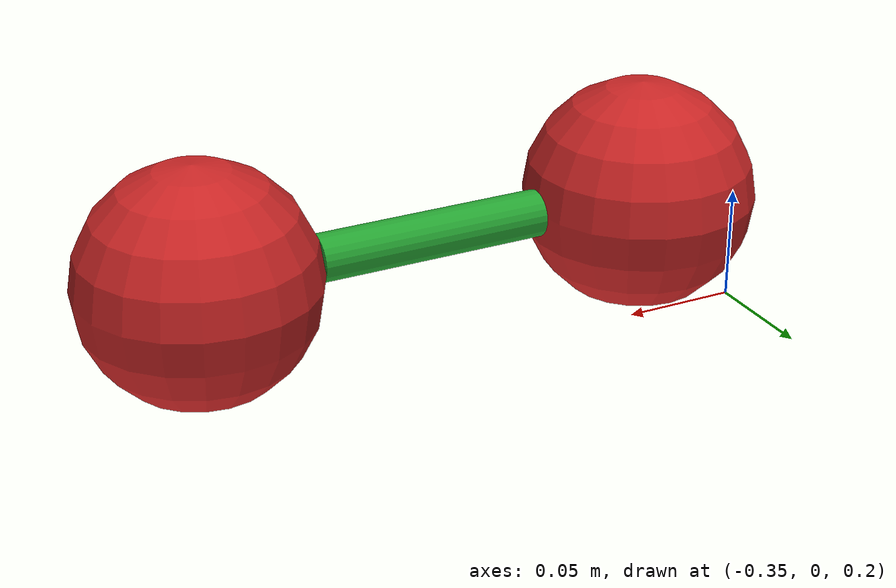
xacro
<?xml version="1.0"?>
<robot name="world" xmlns:xacro="http://www.ros.org/wiki/xacro">

  <xacro:arg name="object_name" default="truss"/>
  <xacro:arg name="object_dimension" default="3d"/>
  <xacro:arg name="object_origin_xyz" default="-0.2 0 0.26"/>
  <xacro:arg name="object_origin_rpy" default="0.0 0.0 0.0"/>

  <!-- import the tomato -->
  <xacro:include filename="$(find flex_gazebo)/urdf/$(arg object_name)/$(arg object_dimension)/$(arg object_name).xacro"/>

  <!-- Fix to world just for testing -->
  <link name="world"/>

  <!-- tomato -->
  <xacro:truss>
    <origin xyz="$(arg object_origin_xyz)" rpy="$(arg object_origin_rpy)" />
  </xacro:truss>

</robot>

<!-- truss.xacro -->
<robot xmlns:xacro="http://www.ros.org/wiki/xacro">

  <!-- Import all Gazebo-customization elements, including Gazebo colors -->
  <xacro:include filename="$(find flex_gazebo)/urdf/truss/3d/tomato.xacro"/>
  <xacro:include filename="$(find flex_gazebo)/urdf/truss/3d/peduncle.xacro"/>

  <xacro:macro name="truss" params="*origin">
    <xacro:property name="tomato_radius" value="0.05" />
    <xacro:property name="peduncle_length" value="0.1" />
    <xacro:property name="peduncle_radius" value="0.01" />

    <xacro:peduncle peduncle_length="${peduncle_length}"
      peduncle_radius="${peduncle_radius}"
      parent_link="world"/>

    <xacro:tomato tomato_name="1" radius="${tomato_radius}" parent_link="peduncle">
          <origin xyz="${peduncle_length/2 + tomato_radius} 0 0" rpy="0 0 0" />
    </xacro:tomato>

    <xacro:tomato tomato_name="2" radius="${tomato_radius}" parent_link="peduncle">
          <origin xyz="${-peduncle_length/2 - tomato_radius} 0 0" rpy="0 0 0" />
    </xacro:tomato>

  </xacro:macro>
</robot>

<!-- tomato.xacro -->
<robot xmlns:xacro="http://www.ros.org/wiki/xacro">
  <!-- Import all Gazebo-customization elements, including Gazebo colors -->
  <xacro:include filename="$(find flex_gazebo)/urdf/truss/3d/tomato.gazebo.xacro" />

  <xacro:macro name="tomato" params="tomato_name radius parent_link *origin">
    <xacro:property name = "rho" value="1000"/> <!-- [kg/m^3]-->
    <xacro:property name = "V" value="${4/3*pi*radius**3}"/>
    <xacro:property name = "mass" value="${rho * V}"/> <!-- [kg]-->

    <joint name="tomato_joint${tomato_name}" type="fixed">
      <xacro:insert_block name="origin" />
      <parent link="${parent_link}"/>
      <child link="tomato${tomato_name}" />
    </joint>

    <link name="tomato${tomato_name}">
      <collision>
        <origin xyz="0 0 0" rpy="0 0 0"/>
        <geometry>
          <sphere radius = "${radius}" />
        </geometry>
      </collision>

      <visual>
        <origin xyz="0 0 0" rpy="0 0 0"/>
        <geometry>
          <sphere radius = "${radius}" />
        </geometry>
        <material name="Red"/>
      </visual>

      <inertial>
        <origin xyz="0 0 0" rpy="0 0 0"/>
        <mass value="${mass}"/>
        <inertia
	         ixx="${2/5*mass*radius**2}" ixy="0.0" ixz="0.0"
           iyy="${2/5*mass*radius**2}" iyz="0.0"
           izz="${2/5*mass*radius**2}"/>
       </inertial>
     </link>

     <xacro:tomato_gazebo tomato_name="${tomato_name}"/>
  </xacro:macro>
</robot>

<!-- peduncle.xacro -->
<robot xmlns:xacro="http://www.ros.org/wiki/xacro">
  <xacro:include filename="$(find flex_gazebo)/urdf/truss/3d/peduncle.gazebo.xacro" />

  <xacro:macro name="peduncle" params="peduncle_length peduncle_radius parent_link">
    <xacro:property name = "rho" value="1"/> <!-- [kg/m^3]-->
    <xacro:property name = "volume" value="${pi*peduncle_length*peduncle_radius**2}"/>
    <xacro:property name = "mass" value="${rho * volume}"/> <!-- [kg]-->

    <joint name="truss_joint" type="floating">
      <xacro:insert_block name="origin" />
      <parent link="world"/>
      <child link="peduncle" />
    </joint>

    <link name="peduncle">
      <collision>
        <!-- origin is in the center of the cylinder-->
        <origin xyz="0 0 0" rpy="0 ${pi/2} 0"/>
        <geometry>
          <cylinder radius="${peduncle_radius}" length="${peduncle_length}"/>
        </geometry>
      </collision>

      <visual>
        <origin xyz="0 0 0" rpy="0 ${pi/2} 0"/>
        <geometry>
          <cylinder radius="${peduncle_radius}" length="${peduncle_length}"/>
        </geometry>
        <material name="Green"/>
      </visual>

      <inertial>
        <origin xyz="0 0 0" rpy="0 0 0"/>
        <mass value="${mass}"/>
        <inertia
           ixx="${1/12*mass*peduncle_length**2}" ixy="0.0" ixz="0.0"
           iyy="${1/12*mass*peduncle_length**2}" iyz="0.0"
           izz="${1/2*mass*peduncle_radius**2}"/>
       </inertial>
     </link>

     <xacro:peduncle_gazebo/>
 </xacro:macro>
</robot>
